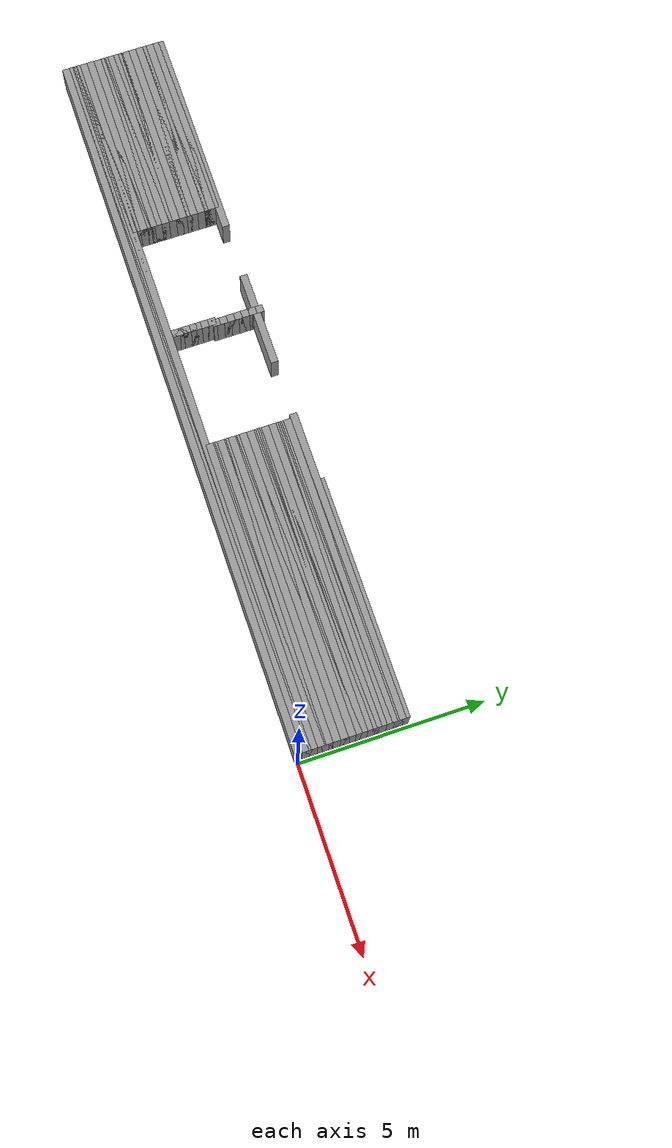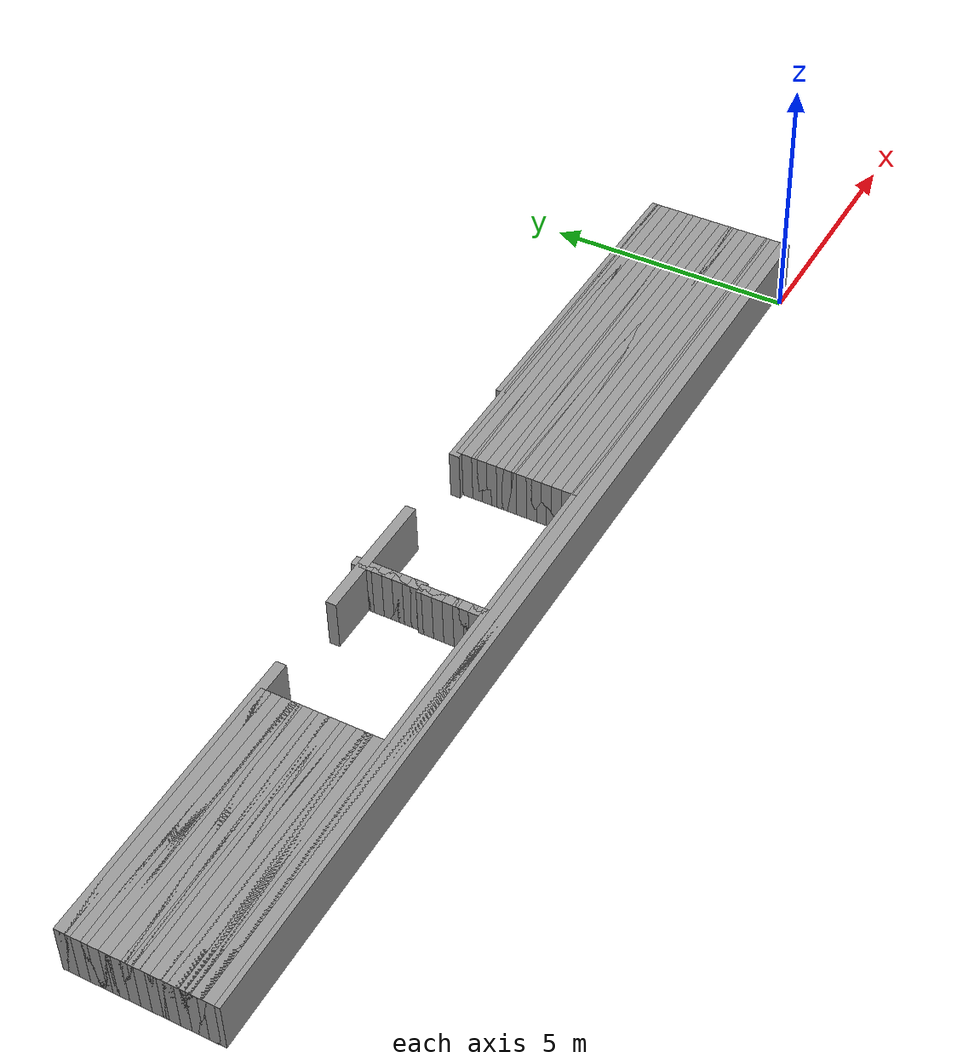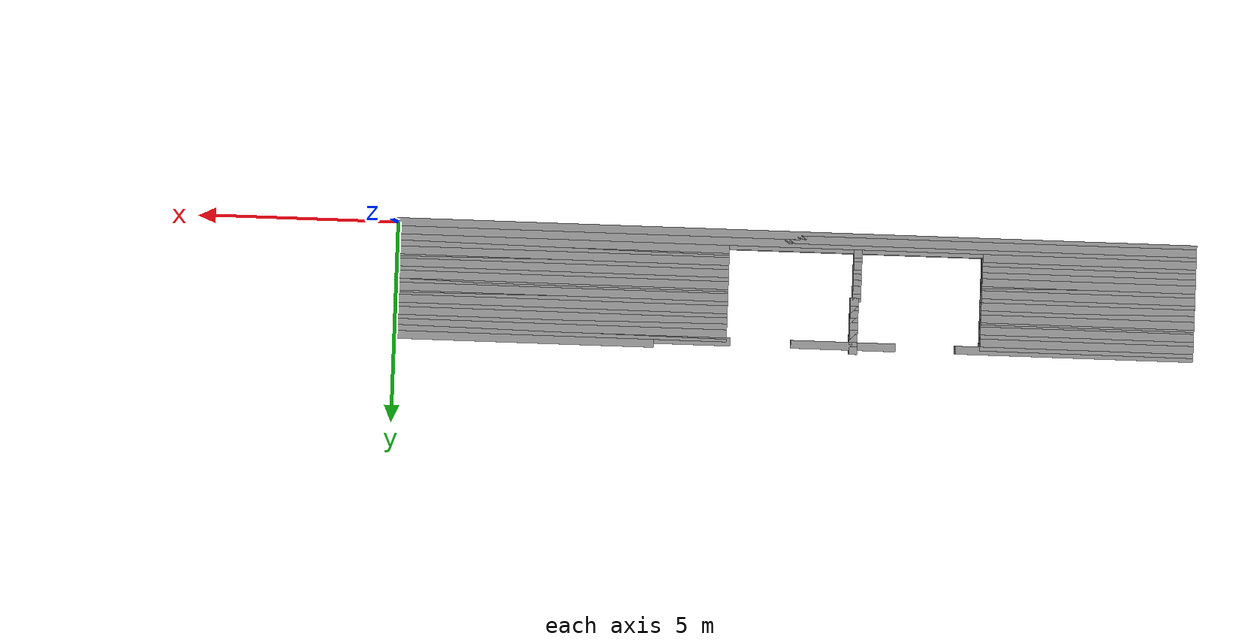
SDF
<sdf version="1.6">
 <world name="GridMap">
  <model name="GridMap">
   <link name="Wall_(99.5,0.0)">
    <collision name="Wall_(99.5,0.0)_Collision">
     <geometry><box><size>19.9 0.2 1.0</size></box></geometry>
     <pose>-9.95 0.0 0.5 0 -0 0</pose>
    </collision>
    <visual name="Wall_(99.5,0.0)_Visual">
     <geometry><box><size>19.9 0.2 1.0</size></box></geometry>
     <pose>-9.95 0.0 0.5 0 -0 0</pose>
     <material>
      <script><uri>file://media/materials/scripts/gazebo.material</uri><name>Gazebo/Grey</name></script>
      <ambient>1 1 1 1</ambient>
     </material>
     <meta><layer>0</layer></meta>
    </visual>
    <pose>0 0 0.5 0 -0 0</pose>
   </link>
   <link name="Wall_(99.5,1.0)">
    <collision name="Wall_(99.5,1.0)_Collision">
     <geometry><box><size>19.9 0.2 1.0</size></box></geometry>
     <pose>-9.95 0.1 0.5 0 -0 0</pose>
    </collision>
    <visual name="Wall_(99.5,1.0)_Visual">
     <geometry><box><size>19.9 0.2 1.0</size></box></geometry>
     <pose>-9.95 0.1 0.5 0 -0 0</pose>
     <material>
      <script><uri>file://media/materials/scripts/gazebo.material</uri><name>Gazebo/Grey</name></script>
      <ambient>1 1 1 1</ambient>
     </material>
     <meta><layer>0</layer></meta>
    </visual>
    <pose>0 0 0.5 0 -0 0</pose>
   </link>
   <link name="Wall_(99.5,2.0)">
    <collision name="Wall_(99.5,2.0)_Collision">
     <geometry><box><size>19.9 0.2 1.0</size></box></geometry>
     <pose>-9.95 0.2 0.5 0 -0 0</pose>
    </collision>
    <visual name="Wall_(99.5,2.0)_Visual">
     <geometry><box><size>19.9 0.2 1.0</size></box></geometry>
     <pose>-9.95 0.2 0.5 0 -0 0</pose>
     <material>
      <script><uri>file://media/materials/scripts/gazebo.material</uri><name>Gazebo/Grey</name></script>
      <ambient>1 1 1 1</ambient>
     </material>
     <meta><layer>0</layer></meta>
    </visual>
    <pose>0 0 0.5 0 -0 0</pose>
   </link>
   <link name="Wall_(99.5,3.0)">
    <collision name="Wall_(99.5,3.0)_Collision">
     <geometry><box><size>19.9 0.2 1.0</size></box></geometry>
     <pose>-9.95 0.3 0.5 0 -0 0</pose>
    </collision>
    <visual name="Wall_(99.5,3.0)_Visual">
     <geometry><box><size>19.9 0.2 1.0</size></box></geometry>
     <pose>-9.95 0.3 0.5 0 -0 0</pose>
     <material>
      <script><uri>file://media/materials/scripts/gazebo.material</uri><name>Gazebo/Grey</name></script>
      <ambient>1 1 1 1</ambient>
     </material>
     <meta><layer>0</layer></meta>
    </visual>
    <pose>0 0 0.5 0 -0 0</pose>
   </link>
   <link name="Wall_(41.5,4.0)">
    <collision name="Wall_(41.5,4.0)_Collision">
     <geometry><box><size>8.3 0.2 1.0</size></box></geometry>
     <pose>-4.15 0.4 0.5 0 -0 0</pose>
    </collision>
    <visual name="Wall_(41.5,4.0)_Visual">
     <geometry><box><size>8.3 0.2 1.0</size></box></geometry>
     <pose>-4.15 0.4 0.5 0 -0 0</pose>
     <material>
      <script><uri>file://media/materials/scripts/gazebo.material</uri><name>Gazebo/Grey</name></script>
      <ambient>1 1 1 1</ambient>
     </material>
     <meta><layer>0</layer></meta>
    </visual>
    <pose>0 0 0.5 0 -0 0</pose>
   </link>
   <link name="Wall_(115.0,4.0)">
    <collision name="Wall_(115.0,4.0)_Collision">
     <geometry><box><size>0.2 0.2 1.0</size></box></geometry>
     <pose>-11.5 0.4 0.5 0 -0 0</pose>
    </collision>
    <visual name="Wall_(115.0,4.0)_Visual">
     <geometry><box><size>0.2 0.2 1.0</size></box></geometry>
     <pose>-11.5 0.4 0.5 0 -0 0</pose>
     <material>
      <script><uri>file://media/materials/scripts/gazebo.material</uri><name>Gazebo/Grey</name></script>
      <ambient>1 1 1 1</ambient>
     </material>
     <meta><layer>0</layer></meta>
    </visual>
    <pose>0 0 0.5 0 -0 0</pose>
   </link>
   <link name="Wall_(172.5,4.0)">
    <collision name="Wall_(172.5,4.0)_Collision">
     <geometry><box><size>5.3 0.2 1.0</size></box></geometry>
     <pose>-17.25 0.4 0.5 0 -0 0</pose>
    </collision>
    <visual name="Wall_(172.5,4.0)_Visual">
     <geometry><box><size>5.3 0.2 1.0</size></box></geometry>
     <pose>-17.25 0.4 0.5 0 -0 0</pose>
     <material>
      <script><uri>file://media/materials/scripts/gazebo.material</uri><name>Gazebo/Grey</name></script>
      <ambient>1 1 1 1</ambient>
     </material>
     <meta><layer>0</layer></meta>
    </visual>
    <pose>0 0 0.5 0 -0 0</pose>
   </link>
   <link name="Wall_(41.5,5.0)">
    <collision name="Wall_(41.5,5.0)_Collision">
     <geometry><box><size>8.3 0.2 1.0</size></box></geometry>
     <pose>-4.15 0.5 0.5 0 -0 0</pose>
    </collision>
    <visual name="Wall_(41.5,5.0)_Visual">
     <geometry><box><size>8.3 0.2 1.0</size></box></geometry>
     <pose>-4.15 0.5 0.5 0 -0 0</pose>
     <material>
      <script><uri>file://media/materials/scripts/gazebo.material</uri><name>Gazebo/Grey</name></script>
      <ambient>1 1 1 1</ambient>
     </material>
     <meta><layer>0</layer></meta>
    </visual>
    <pose>0 0 0.5 0 -0 0</pose>
   </link>
   <link name="Wall_(115.0,5.0)">
    <collision name="Wall_(115.0,5.0)_Collision">
     <geometry><box><size>0.2 0.2 1.0</size></box></geometry>
     <pose>-11.5 0.5 0.5 0 -0 0</pose>
    </collision>
    <visual name="Wall_(115.0,5.0)_Visual">
     <geometry><box><size>0.2 0.2 1.0</size></box></geometry>
     <pose>-11.5 0.5 0.5 0 -0 0</pose>
     <material>
      <script><uri>file://media/materials/scripts/gazebo.material</uri><name>Gazebo/Grey</name></script>
      <ambient>1 1 1 1</ambient>
     </material>
     <meta><layer>0</layer></meta>
    </visual>
    <pose>0 0 0.5 0 -0 0</pose>
   </link>
   <link name="Wall_(172.5,5.0)">
    <collision name="Wall_(172.5,5.0)_Collision">
     <geometry><box><size>5.3 0.2 1.0</size></box></geometry>
     <pose>-17.25 0.5 0.5 0 -0 0</pose>
    </collision>
    <visual name="Wall_(172.5,5.0)_Visual">
     <geometry><box><size>5.3 0.2 1.0</size></box></geometry>
     <pose>-17.25 0.5 0.5 0 -0 0</pose>
     <material>
      <script><uri>file://media/materials/scripts/gazebo.material</uri><name>Gazebo/Grey</name></script>
      <ambient>1 1 1 1</ambient>
     </material>
     <meta><layer>0</layer></meta>
    </visual>
    <pose>0 0 0.5 0 -0 0</pose>
   </link>
   <link name="Wall_(41.5,6.0)">
    <collision name="Wall_(41.5,6.0)_Collision">
     <geometry><box><size>8.3 0.2 1.0</size></box></geometry>
     <pose>-4.15 0.6 0.5 0 -0 0</pose>
    </collision>
    <visual name="Wall_(41.5,6.0)_Visual">
     <geometry><box><size>8.3 0.2 1.0</size></box></geometry>
     <pose>-4.15 0.6 0.5 0 -0 0</pose>
     <material>
      <script><uri>file://media/materials/scripts/gazebo.material</uri><name>Gazebo/Grey</name></script>
      <ambient>1 1 1 1</ambient>
     </material>
     <meta><layer>0</layer></meta>
    </visual>
    <pose>0 0 0.5 0 -0 0</pose>
   </link>
   <link name="Wall_(115.0,6.0)">
    <collision name="Wall_(115.0,6.0)_Collision">
     <geometry><box><size>0.2 0.2 1.0</size></box></geometry>
     <pose>-11.5 0.6 0.5 0 -0 0</pose>
    </collision>
    <visual name="Wall_(115.0,6.0)_Visual">
     <geometry><box><size>0.2 0.2 1.0</size></box></geometry>
     <pose>-11.5 0.6 0.5 0 -0 0</pose>
     <material>
      <script><uri>file://media/materials/scripts/gazebo.material</uri><name>Gazebo/Grey</name></script>
      <ambient>1 1 1 1</ambient>
     </material>
     <meta><layer>0</layer></meta>
    </visual>
    <pose>0 0 0.5 0 -0 0</pose>
   </link>
   <link name="Wall_(172.5,6.0)">
    <collision name="Wall_(172.5,6.0)_Collision">
     <geometry><box><size>5.3 0.2 1.0</size></box></geometry>
     <pose>-17.25 0.6 0.5 0 -0 0</pose>
    </collision>
    <visual name="Wall_(172.5,6.0)_Visual">
     <geometry><box><size>5.3 0.2 1.0</size></box></geometry>
     <pose>-17.25 0.6 0.5 0 -0 0</pose>
     <material>
      <script><uri>file://media/materials/scripts/gazebo.material</uri><name>Gazebo/Grey</name></script>
      <ambient>1 1 1 1</ambient>
     </material>
     <meta><layer>0</layer></meta>
    </visual>
    <pose>0 0 0.5 0 -0 0</pose>
   </link>
   <link name="Wall_(41.5,7.0)">
    <collision name="Wall_(41.5,7.0)_Collision">
     <geometry><box><size>8.3 0.2 1.0</size></box></geometry>
     <pose>-4.15 0.7 0.5 0 -0 0</pose>
    </collision>
    <visual name="Wall_(41.5,7.0)_Visual">
     <geometry><box><size>8.3 0.2 1.0</size></box></geometry>
     <pose>-4.15 0.7 0.5 0 -0 0</pose>
     <material>
      <script><uri>file://media/materials/scripts/gazebo.material</uri><name>Gazebo/Grey</name></script>
      <ambient>1 1 1 1</ambient>
     </material>
     <meta><layer>0</layer></meta>
    </visual>
    <pose>0 0 0.5 0 -0 0</pose>
   </link>
   <link name="Wall_(115.0,7.0)">
    <collision name="Wall_(115.0,7.0)_Collision">
     <geometry><box><size>0.2 0.2 1.0</size></box></geometry>
     <pose>-11.5 0.7 0.5 0 -0 0</pose>
    </collision>
    <visual name="Wall_(115.0,7.0)_Visual">
     <geometry><box><size>0.2 0.2 1.0</size></box></geometry>
     <pose>-11.5 0.7 0.5 0 -0 0</pose>
     <material>
      <script><uri>file://media/materials/scripts/gazebo.material</uri><name>Gazebo/Grey</name></script>
      <ambient>1 1 1 1</ambient>
     </material>
     <meta><layer>0</layer></meta>
    </visual>
    <pose>0 0 0.5 0 -0 0</pose>
   </link>
   <link name="Wall_(172.5,7.0)">
    <collision name="Wall_(172.5,7.0)_Collision">
     <geometry><box><size>5.3 0.2 1.0</size></box></geometry>
     <pose>-17.25 0.7 0.5 0 -0 0</pose>
    </collision>
    <visual name="Wall_(172.5,7.0)_Visual">
     <geometry><box><size>5.3 0.2 1.0</size></box></geometry>
     <pose>-17.25 0.7 0.5 0 -0 0</pose>
     <material>
      <script><uri>file://media/materials/scripts/gazebo.material</uri><name>Gazebo/Grey</name></script>
      <ambient>1 1 1 1</ambient>
     </material>
     <meta><layer>0</layer></meta>
    </visual>
    <pose>0 0 0.5 0 -0 0</pose>
   </link>
   <link name="Wall_(41.5,8.0)">
    <collision name="Wall_(41.5,8.0)_Collision">
     <geometry><box><size>8.3 0.2 1.0</size></box></geometry>
     <pose>-4.15 0.8 0.5 0 -0 0</pose>
    </collision>
    <visual name="Wall_(41.5,8.0)_Visual">
     <geometry><box><size>8.3 0.2 1.0</size></box></geometry>
     <pose>-4.15 0.8 0.5 0 -0 0</pose>
     <material>
      <script><uri>file://media/materials/scripts/gazebo.material</uri><name>Gazebo/Grey</name></script>
      <ambient>1 1 1 1</ambient>
     </material>
     <meta><layer>0</layer></meta>
    </visual>
    <pose>0 0 0.5 0 -0 0</pose>
   </link>
   <link name="Wall_(115.0,8.0)">
    <collision name="Wall_(115.0,8.0)_Collision">
     <geometry><box><size>0.2 0.2 1.0</size></box></geometry>
     <pose>-11.5 0.8 0.5 0 -0 0</pose>
    </collision>
    <visual name="Wall_(115.0,8.0)_Visual">
     <geometry><box><size>0.2 0.2 1.0</size></box></geometry>
     <pose>-11.5 0.8 0.5 0 -0 0</pose>
     <material>
      <script><uri>file://media/materials/scripts/gazebo.material</uri><name>Gazebo/Grey</name></script>
      <ambient>1 1 1 1</ambient>
     </material>
     <meta><layer>0</layer></meta>
    </visual>
    <pose>0 0 0.5 0 -0 0</pose>
   </link>
   <link name="Wall_(172.5,8.0)">
    <collision name="Wall_(172.5,8.0)_Collision">
     <geometry><box><size>5.3 0.2 1.0</size></box></geometry>
     <pose>-17.25 0.8 0.5 0 -0 0</pose>
    </collision>
    <visual name="Wall_(172.5,8.0)_Visual">
     <geometry><box><size>5.3 0.2 1.0</size></box></geometry>
     <pose>-17.25 0.8 0.5 0 -0 0</pose>
     <material>
      <script><uri>file://media/materials/scripts/gazebo.material</uri><name>Gazebo/Grey</name></script>
      <ambient>1 1 1 1</ambient>
     </material>
     <meta><layer>0</layer></meta>
    </visual>
    <pose>0 0 0.5 0 -0 0</pose>
   </link>
   <link name="Wall_(41.5,9.0)">
    <collision name="Wall_(41.5,9.0)_Collision">
     <geometry><box><size>8.3 0.2 1.0</size></box></geometry>
     <pose>-4.15 0.9 0.5 0 -0 0</pose>
    </collision>
    <visual name="Wall_(41.5,9.0)_Visual">
     <geometry><box><size>8.3 0.2 1.0</size></box></geometry>
     <pose>-4.15 0.9 0.5 0 -0 0</pose>
     <material>
      <script><uri>file://media/materials/scripts/gazebo.material</uri><name>Gazebo/Grey</name></script>
      <ambient>1 1 1 1</ambient>
     </material>
     <meta><layer>0</layer></meta>
    </visual>
    <pose>0 0 0.5 0 -0 0</pose>
   </link>
   <link name="Wall_(115.0,9.0)">
    <collision name="Wall_(115.0,9.0)_Collision">
     <geometry><box><size>0.2 0.2 1.0</size></box></geometry>
     <pose>-11.5 0.9 0.5 0 -0 0</pose>
    </collision>
    <visual name="Wall_(115.0,9.0)_Visual">
     <geometry><box><size>0.2 0.2 1.0</size></box></geometry>
     <pose>-11.5 0.9 0.5 0 -0 0</pose>
     <material>
      <script><uri>file://media/materials/scripts/gazebo.material</uri><name>Gazebo/Grey</name></script>
      <ambient>1 1 1 1</ambient>
     </material>
     <meta><layer>0</layer></meta>
    </visual>
    <pose>0 0 0.5 0 -0 0</pose>
   </link>
   <link name="Wall_(172.5,9.0)">
    <collision name="Wall_(172.5,9.0)_Collision">
     <geometry><box><size>5.3 0.2 1.0</size></box></geometry>
     <pose>-17.25 0.9 0.5 0 -0 0</pose>
    </collision>
    <visual name="Wall_(172.5,9.0)_Visual">
     <geometry><box><size>5.3 0.2 1.0</size></box></geometry>
     <pose>-17.25 0.9 0.5 0 -0 0</pose>
     <material>
      <script><uri>file://media/materials/scripts/gazebo.material</uri><name>Gazebo/Grey</name></script>
      <ambient>1 1 1 1</ambient>
     </material>
     <meta><layer>0</layer></meta>
    </visual>
    <pose>0 0 0.5 0 -0 0</pose>
   </link>
   <link name="Wall_(41.5,10.0)">
    <collision name="Wall_(41.5,10.0)_Collision">
     <geometry><box><size>8.3 0.2 1.0</size></box></geometry>
     <pose>-4.15 1.0 0.5 0 -0 0</pose>
    </collision>
    <visual name="Wall_(41.5,10.0)_Visual">
     <geometry><box><size>8.3 0.2 1.0</size></box></geometry>
     <pose>-4.15 1.0 0.5 0 -0 0</pose>
     <material>
      <script><uri>file://media/materials/scripts/gazebo.material</uri><name>Gazebo/Grey</name></script>
      <ambient>1 1 1 1</ambient>
     </material>
     <meta><layer>0</layer></meta>
    </visual>
    <pose>0 0 0.5 0 -0 0</pose>
   </link>
   <link name="Wall_(115.0,10.0)">
    <collision name="Wall_(115.0,10.0)_Collision">
     <geometry><box><size>0.2 0.2 1.0</size></box></geometry>
     <pose>-11.5 1.0 0.5 0 -0 0</pose>
    </collision>
    <visual name="Wall_(115.0,10.0)_Visual">
     <geometry><box><size>0.2 0.2 1.0</size></box></geometry>
     <pose>-11.5 1.0 0.5 0 -0 0</pose>
     <material>
      <script><uri>file://media/materials/scripts/gazebo.material</uri><name>Gazebo/Grey</name></script>
      <ambient>1 1 1 1</ambient>
     </material>
     <meta><layer>0</layer></meta>
    </visual>
    <pose>0 0 0.5 0 -0 0</pose>
   </link>
   <link name="Wall_(172.5,10.0)">
    <collision name="Wall_(172.5,10.0)_Collision">
     <geometry><box><size>5.3 0.2 1.0</size></box></geometry>
     <pose>-17.25 1.0 0.5 0 -0 0</pose>
    </collision>
    <visual name="Wall_(172.5,10.0)_Visual">
     <geometry><box><size>5.3 0.2 1.0</size></box></geometry>
     <pose>-17.25 1.0 0.5 0 -0 0</pose>
     <material>
      <script><uri>file://media/materials/scripts/gazebo.material</uri><name>Gazebo/Grey</name></script>
      <ambient>1 1 1 1</ambient>
     </material>
     <meta><layer>0</layer></meta>
    </visual>
    <pose>0 0 0.5 0 -0 0</pose>
   </link>
   <link name="Wall_(41.5,11.0)">
    <collision name="Wall_(41.5,11.0)_Collision">
     <geometry><box><size>8.3 0.2 1.0</size></box></geometry>
     <pose>-4.15 1.1 0.5 0 -0 0</pose>
    </collision>
    <visual name="Wall_(41.5,11.0)_Visual">
     <geometry><box><size>8.3 0.2 1.0</size></box></geometry>
     <pose>-4.15 1.1 0.5 0 -0 0</pose>
     <material>
      <script><uri>file://media/materials/scripts/gazebo.material</uri><name>Gazebo/Grey</name></script>
      <ambient>1 1 1 1</ambient>
     </material>
     <meta><layer>0</layer></meta>
    </visual>
    <pose>0 0 0.5 0 -0 0</pose>
   </link>
   <link name="Wall_(115.0,11.0)">
    <collision name="Wall_(115.0,11.0)_Collision">
     <geometry><box><size>0.2 0.2 1.0</size></box></geometry>
     <pose>-11.5 1.1 0.5 0 -0 0</pose>
    </collision>
    <visual name="Wall_(115.0,11.0)_Visual">
     <geometry><box><size>0.2 0.2 1.0</size></box></geometry>
     <pose>-11.5 1.1 0.5 0 -0 0</pose>
     <material>
      <script><uri>file://media/materials/scripts/gazebo.material</uri><name>Gazebo/Grey</name></script>
      <ambient>1 1 1 1</ambient>
     </material>
     <meta><layer>0</layer></meta>
    </visual>
    <pose>0 0 0.5 0 -0 0</pose>
   </link>
   <link name="Wall_(172.5,11.0)">
    <collision name="Wall_(172.5,11.0)_Collision">
     <geometry><box><size>5.3 0.2 1.0</size></box></geometry>
     <pose>-17.25 1.1 0.5 0 -0 0</pose>
    </collision>
    <visual name="Wall_(172.5,11.0)_Visual">
     <geometry><box><size>5.3 0.2 1.0</size></box></geometry>
     <pose>-17.25 1.1 0.5 0 -0 0</pose>
     <material>
      <script><uri>file://media/materials/scripts/gazebo.material</uri><name>Gazebo/Grey</name></script>
      <ambient>1 1 1 1</ambient>
     </material>
     <meta><layer>0</layer></meta>
    </visual>
    <pose>0 0 0.5 0 -0 0</pose>
   </link>
   <link name="Wall_(41.5,12.0)">
    <collision name="Wall_(41.5,12.0)_Collision">
     <geometry><box><size>8.3 0.2 1.0</size></box></geometry>
     <pose>-4.15 1.2 0.5 0 -0 0</pose>
    </collision>
    <visual name="Wall_(41.5,12.0)_Visual">
     <geometry><box><size>8.3 0.2 1.0</size></box></geometry>
     <pose>-4.15 1.2 0.5 0 -0 0</pose>
     <material>
      <script><uri>file://media/materials/scripts/gazebo.material</uri><name>Gazebo/Grey</name></script>
      <ambient>1 1 1 1</ambient>
     </material>
     <meta><layer>0</layer></meta>
    </visual>
    <pose>0 0 0.5 0 -0 0</pose>
   </link>
   <link name="Wall_(115.0,12.0)">
    <collision name="Wall_(115.0,12.0)_Collision">
     <geometry><box><size>0.2 0.2 1.0</size></box></geometry>
     <pose>-11.5 1.2 0.5 0 -0 0</pose>
    </collision>
    <visual name="Wall_(115.0,12.0)_Visual">
     <geometry><box><size>0.2 0.2 1.0</size></box></geometry>
     <pose>-11.5 1.2 0.5 0 -0 0</pose>
     <material>
      <script><uri>file://media/materials/scripts/gazebo.material</uri><name>Gazebo/Grey</name></script>
      <ambient>1 1 1 1</ambient>
     </material>
     <meta><layer>0</layer></meta>
    </visual>
    <pose>0 0 0.5 0 -0 0</pose>
   </link>
   <link name="Wall_(172.5,12.0)">
    <collision name="Wall_(172.5,12.0)_Collision">
     <geometry><box><size>5.3 0.2 1.0</size></box></geometry>
     <pose>-17.25 1.2 0.5 0 -0 0</pose>
    </collision>
    <visual name="Wall_(172.5,12.0)_Visual">
     <geometry><box><size>5.3 0.2 1.0</size></box></geometry>
     <pose>-17.25 1.2 0.5 0 -0 0</pose>
     <material>
      <script><uri>file://media/materials/scripts/gazebo.material</uri><name>Gazebo/Grey</name></script>
      <ambient>1 1 1 1</ambient>
     </material>
     <meta><layer>0</layer></meta>
    </visual>
    <pose>0 0 0.5 0 -0 0</pose>
   </link>
   <link name="Wall_(41.5,13.0)">
    <collision name="Wall_(41.5,13.0)_Collision">
     <geometry><box><size>8.3 0.2 1.0</size></box></geometry>
     <pose>-4.15 1.3 0.5 0 -0 0</pose>
    </collision>
    <visual name="Wall_(41.5,13.0)_Visual">
     <geometry><box><size>8.3 0.2 1.0</size></box></geometry>
     <pose>-4.15 1.3 0.5 0 -0 0</pose>
     <material>
      <script><uri>file://media/materials/scripts/gazebo.material</uri><name>Gazebo/Grey</name></script>
      <ambient>1 1 1 1</ambient>
     </material>
     <meta><layer>0</layer></meta>
    </visual>
    <pose>0 0 0.5 0 -0 0</pose>
   </link>
   <link name="Wall_(115.0,13.0)">
    <collision name="Wall_(115.0,13.0)_Collision">
     <geometry><box><size>0.2 0.2 1.0</size></box></geometry>
     <pose>-11.5 1.3 0.5 0 -0 0</pose>
    </collision>
    <visual name="Wall_(115.0,13.0)_Visual">
     <geometry><box><size>0.2 0.2 1.0</size></box></geometry>
     <pose>-11.5 1.3 0.5 0 -0 0</pose>
     <material>
      <script><uri>file://media/materials/scripts/gazebo.material</uri><name>Gazebo/Grey</name></script>
      <ambient>1 1 1 1</ambient>
     </material>
     <meta><layer>0</layer></meta>
    </visual>
    <pose>0 0 0.5 0 -0 0</pose>
   </link>
   <link name="Wall_(172.5,13.0)">
    <collision name="Wall_(172.5,13.0)_Collision">
     <geometry><box><size>5.3 0.2 1.0</size></box></geometry>
     <pose>-17.25 1.3 0.5 0 -0 0</pose>
    </collision>
    <visual name="Wall_(172.5,13.0)_Visual">
     <geometry><box><size>5.3 0.2 1.0</size></box></geometry>
     <pose>-17.25 1.3 0.5 0 -0 0</pose>
     <material>
      <script><uri>file://media/materials/scripts/gazebo.material</uri><name>Gazebo/Grey</name></script>
      <ambient>1 1 1 1</ambient>
     </material>
     <meta><layer>0</layer></meta>
    </visual>
    <pose>0 0 0.5 0 -0 0</pose>
   </link>
   <link name="Wall_(41.5,14.0)">
    <collision name="Wall_(41.5,14.0)_Collision">
     <geometry><box><size>8.3 0.2 1.0</size></box></geometry>
     <pose>-4.15 1.4 0.5 0 -0 0</pose>
    </collision>
    <visual name="Wall_(41.5,14.0)_Visual">
     <geometry><box><size>8.3 0.2 1.0</size></box></geometry>
     <pose>-4.15 1.4 0.5 0 -0 0</pose>
     <material>
      <script><uri>file://media/materials/scripts/gazebo.material</uri><name>Gazebo/Grey</name></script>
      <ambient>1 1 1 1</ambient>
     </material>
     <meta><layer>0</layer></meta>
    </visual>
    <pose>0 0 0.5 0 -0 0</pose>
   </link>
   <link name="Wall_(115.0,14.0)">
    <collision name="Wall_(115.0,14.0)_Collision">
     <geometry><box><size>0.2 0.2 1.0</size></box></geometry>
     <pose>-11.5 1.4 0.5 0 -0 0</pose>
    </collision>
    <visual name="Wall_(115.0,14.0)_Visual">
     <geometry><box><size>0.2 0.2 1.0</size></box></geometry>
     <pose>-11.5 1.4 0.5 0 -0 0</pose>
     <material>
      <script><uri>file://media/materials/scripts/gazebo.material</uri><name>Gazebo/Grey</name></script>
      <ambient>1 1 1 1</ambient>
     </material>
     <meta><layer>0</layer></meta>
    </visual>
    <pose>0 0 0.5 0 -0 0</pose>
   </link>
   <link name="Wall_(172.5,14.0)">
    <collision name="Wall_(172.5,14.0)_Collision">
     <geometry><box><size>5.3 0.2 1.0</size></box></geometry>
     <pose>-17.25 1.4 0.5 0 -0 0</pose>
    </collision>
    <visual name="Wall_(172.5,14.0)_Visual">
     <geometry><box><size>5.3 0.2 1.0</size></box></geometry>
     <pose>-17.25 1.4 0.5 0 -0 0</pose>
     <material>
      <script><uri>file://media/materials/scripts/gazebo.material</uri><name>Gazebo/Grey</name></script>
      <ambient>1 1 1 1</ambient>
     </material>
     <meta><layer>0</layer></meta>
    </visual>
    <pose>0 0 0.5 0 -0 0</pose>
   </link>
   <link name="Wall_(41.5,15.0)">
    <collision name="Wall_(41.5,15.0)_Collision">
     <geometry><box><size>8.3 0.2 1.0</size></box></geometry>
     <pose>-4.15 1.5 0.5 0 -0 0</pose>
    </collision>
    <visual name="Wall_(41.5,15.0)_Visual">
     <geometry><box><size>8.3 0.2 1.0</size></box></geometry>
     <pose>-4.15 1.5 0.5 0 -0 0</pose>
     <material>
      <script><uri>file://media/materials/scripts/gazebo.material</uri><name>Gazebo/Grey</name></script>
      <ambient>1 1 1 1</ambient>
     </material>
     <meta><layer>0</layer></meta>
    </visual>
    <pose>0 0 0.5 0 -0 0</pose>
   </link>
   <link name="Wall_(115.0,15.0)">
    <collision name="Wall_(115.0,15.0)_Collision">
     <geometry><box><size>0.2 0.2 1.0</size></box></geometry>
     <pose>-11.5 1.5 0.5 0 -0 0</pose>
    </collision>
    <visual name="Wall_(115.0,15.0)_Visual">
     <geometry><box><size>0.2 0.2 1.0</size></box></geometry>
     <pose>-11.5 1.5 0.5 0 -0 0</pose>
     <material>
      <script><uri>file://media/materials/scripts/gazebo.material</uri><name>Gazebo/Grey</name></script>
      <ambient>1 1 1 1</ambient>
     </material>
     <meta><layer>0</layer></meta>
    </visual>
    <pose>0 0 0.5 0 -0 0</pose>
   </link>
   <link name="Wall_(172.5,15.0)">
    <collision name="Wall_(172.5,15.0)_Collision">
     <geometry><box><size>5.3 0.2 1.0</size></box></geometry>
     <pose>-17.25 1.5 0.5 0 -0 0</pose>
    </collision>
    <visual name="Wall_(172.5,15.0)_Visual">
     <geometry><box><size>5.3 0.2 1.0</size></box></geometry>
     <pose>-17.25 1.5 0.5 0 -0 0</pose>
     <material>
      <script><uri>file://media/materials/scripts/gazebo.material</uri><name>Gazebo/Grey</name></script>
      <ambient>1 1 1 1</ambient>
     </material>
     <meta><layer>0</layer></meta>
    </visual>
    <pose>0 0 0.5 0 -0 0</pose>
   </link>
   <link name="Wall_(41.5,16.0)">
    <collision name="Wall_(41.5,16.0)_Collision">
     <geometry><box><size>8.3 0.2 1.0</size></box></geometry>
     <pose>-4.15 1.6 0.5 0 -0 0</pose>
    </collision>
    <visual name="Wall_(41.5,16.0)_Visual">
     <geometry><box><size>8.3 0.2 1.0</size></box></geometry>
     <pose>-4.15 1.6 0.5 0 -0 0</pose>
     <material>
      <script><uri>file://media/materials/scripts/gazebo.material</uri><name>Gazebo/Grey</name></script>
      <ambient>1 1 1 1</ambient>
     </material>
     <meta><layer>0</layer></meta>
    </visual>
    <pose>0 0 0.5 0 -0 0</pose>
   </link>
   <link name="Wall_(114.5,16.0)">
    <collision name="Wall_(114.5,16.0)_Collision">
     <geometry><box><size>0.2 0.2 1.0</size></box></geometry>
     <pose>-11.45 1.6 0.5 0 -0 0</pose>
    </collision>
    <visual name="Wall_(114.5,16.0)_Visual">
     <geometry><box><size>0.2 0.2 1.0</size></box></geometry>
     <pose>-11.45 1.6 0.5 0 -0 0</pose>
     <material>
      <script><uri>file://media/materials/scripts/gazebo.material</uri><name>Gazebo/Grey</name></script>
      <ambient>1 1 1 1</ambient>
     </material>
     <meta><layer>0</layer></meta>
    </visual>
    <pose>0 0 0.5 0 -0 0</pose>
   </link>
   <link name="Wall_(172.5,16.0)">
    <collision name="Wall_(172.5,16.0)_Collision">
     <geometry><box><size>5.3 0.2 1.0</size></box></geometry>
     <pose>-17.25 1.6 0.5 0 -0 0</pose>
    </collision>
    <visual name="Wall_(172.5,16.0)_Visual">
     <geometry><box><size>5.3 0.2 1.0</size></box></geometry>
     <pose>-17.25 1.6 0.5 0 -0 0</pose>
     <material>
      <script><uri>file://media/materials/scripts/gazebo.material</uri><name>Gazebo/Grey</name></script>
      <ambient>1 1 1 1</ambient>
     </material>
     <meta><layer>0</layer></meta>
    </visual>
    <pose>0 0 0.5 0 -0 0</pose>
   </link>
   <link name="Wall_(41.5,17.0)">
    <collision name="Wall_(41.5,17.0)_Collision">
     <geometry><box><size>8.3 0.2 1.0</size></box></geometry>
     <pose>-4.15 1.7 0.5 0 -0 0</pose>
    </collision>
    <visual name="Wall_(41.5,17.0)_Visual">
     <geometry><box><size>8.3 0.2 1.0</size></box></geometry>
     <pose>-4.15 1.7 0.5 0 -0 0</pose>
     <material>
      <script><uri>file://media/materials/scripts/gazebo.material</uri><name>Gazebo/Grey</name></script>
      <ambient>1 1 1 1</ambient>
     </material>
     <meta><layer>0</layer></meta>
    </visual>
    <pose>0 0 0.5 0 -0 0</pose>
   </link>
   <link name="Wall_(114.5,17.0)">
    <collision name="Wall_(114.5,17.0)_Collision">
     <geometry><box><size>0.2 0.2 1.0</size></box></geometry>
     <pose>-11.45 1.7 0.5 0 -0 0</pose>
    </collision>
    <visual name="Wall_(114.5,17.0)_Visual">
     <geometry><box><size>0.2 0.2 1.0</size></box></geometry>
     <pose>-11.45 1.7 0.5 0 -0 0</pose>
     <material>
      <script><uri>file://media/materials/scripts/gazebo.material</uri><name>Gazebo/Grey</name></script>
      <ambient>1 1 1 1</ambient>
     </material>
     <meta><layer>0</layer></meta>
    </visual>
    <pose>0 0 0.5 0 -0 0</pose>
   </link>
   <link name="Wall_(172.5,17.0)">
    <collision name="Wall_(172.5,17.0)_Collision">
     <geometry><box><size>5.3 0.2 1.0</size></box></geometry>
     <pose>-17.25 1.7 0.5 0 -0 0</pose>
    </collision>
    <visual name="Wall_(172.5,17.0)_Visual">
     <geometry><box><size>5.3 0.2 1.0</size></box></geometry>
     <pose>-17.25 1.7 0.5 0 -0 0</pose>
     <material>
      <script><uri>file://media/materials/scripts/gazebo.material</uri><name>Gazebo/Grey</name></script>
      <ambient>1 1 1 1</ambient>
     </material>
     <meta><layer>0</layer></meta>
    </visual>
    <pose>0 0 0.5 0 -0 0</pose>
   </link>
   <link name="Wall_(41.5,18.0)">
    <collision name="Wall_(41.5,18.0)_Collision">
     <geometry><box><size>8.3 0.2 1.0</size></box></geometry>
     <pose>-4.15 1.8 0.5 0 -0 0</pose>
    </collision>
    <visual name="Wall_(41.5,18.0)_Visual">
     <geometry><box><size>8.3 0.2 1.0</size></box></geometry>
     <pose>-4.15 1.8 0.5 0 -0 0</pose>
     <material>
      <script><uri>file://media/materials/scripts/gazebo.material</uri><name>Gazebo/Grey</name></script>
      <ambient>1 1 1 1</ambient>
     </material>
     <meta><layer>0</layer></meta>
    </visual>
    <pose>0 0 0.5 0 -0 0</pose>
   </link>
   <link name="Wall_(114.5,18.0)">
    <collision name="Wall_(114.5,18.0)_Collision">
     <geometry><box><size>0.2 0.2 1.0</size></box></geometry>
     <pose>-11.45 1.8 0.5 0 -0 0</pose>
    </collision>
    <visual name="Wall_(114.5,18.0)_Visual">
     <geometry><box><size>0.2 0.2 1.0</size></box></geometry>
     <pose>-11.45 1.8 0.5 0 -0 0</pose>
     <material>
      <script><uri>file://media/materials/scripts/gazebo.material</uri><name>Gazebo/Grey</name></script>
      <ambient>1 1 1 1</ambient>
     </material>
     <meta><layer>0</layer></meta>
    </visual>
    <pose>0 0 0.5 0 -0 0</pose>
   </link>
   <link name="Wall_(172.5,18.0)">
    <collision name="Wall_(172.5,18.0)_Collision">
     <geometry><box><size>5.3 0.2 1.0</size></box></geometry>
     <pose>-17.25 1.8 0.5 0 -0 0</pose>
    </collision>
    <visual name="Wall_(172.5,18.0)_Visual">
     <geometry><box><size>5.3 0.2 1.0</size></box></geometry>
     <pose>-17.25 1.8 0.5 0 -0 0</pose>
     <material>
      <script><uri>file://media/materials/scripts/gazebo.material</uri><name>Gazebo/Grey</name></script>
      <ambient>1 1 1 1</ambient>
     </material>
     <meta><layer>0</layer></meta>
    </visual>
    <pose>0 0 0.5 0 -0 0</pose>
   </link>
   <link name="Wall_(41.5,19.0)">
    <collision name="Wall_(41.5,19.0)_Collision">
     <geometry><box><size>8.3 0.2 1.0</size></box></geometry>
     <pose>-4.15 1.9 0.5 0 -0 0</pose>
    </collision>
    <visual name="Wall_(41.5,19.0)_Visual">
     <geometry><box><size>8.3 0.2 1.0</size></box></geometry>
     <pose>-4.15 1.9 0.5 0 -0 0</pose>
     <material>
      <script><uri>file://media/materials/scripts/gazebo.material</uri><name>Gazebo/Grey</name></script>
      <ambient>1 1 1 1</ambient>
     </material>
     <meta><layer>0</layer></meta>
    </visual>
    <pose>0 0 0.5 0 -0 0</pose>
   </link>
   <link name="Wall_(114.5,19.0)">
    <collision name="Wall_(114.5,19.0)_Collision">
     <geometry><box><size>0.2 0.2 1.0</size></box></geometry>
     <pose>-11.45 1.9 0.5 0 -0 0</pose>
    </collision>
    <visual name="Wall_(114.5,19.0)_Visual">
     <geometry><box><size>0.2 0.2 1.0</size></box></geometry>
     <pose>-11.45 1.9 0.5 0 -0 0</pose>
     <material>
      <script><uri>file://media/materials/scripts/gazebo.material</uri><name>Gazebo/Grey</name></script>
      <ambient>1 1 1 1</ambient>
     </material>
     <meta><layer>0</layer></meta>
    </visual>
    <pose>0 0 0.5 0 -0 0</pose>
   </link>
   <link name="Wall_(172.5,19.0)">
    <collision name="Wall_(172.5,19.0)_Collision">
     <geometry><box><size>5.3 0.2 1.0</size></box></geometry>
     <pose>-17.25 1.9 0.5 0 -0 0</pose>
    </collision>
    <visual name="Wall_(172.5,19.0)_Visual">
     <geometry><box><size>5.3 0.2 1.0</size></box></geometry>
     <pose>-17.25 1.9 0.5 0 -0 0</pose>
     <material>
      <script><uri>file://media/materials/scripts/gazebo.material</uri><name>Gazebo/Grey</name></script>
      <ambient>1 1 1 1</ambient>
     </material>
     <meta><layer>0</layer></meta>
    </visual>
    <pose>0 0 0.5 0 -0 0</pose>
   </link>
   <link name="Wall_(41.5,20.0)">
    <collision name="Wall_(41.5,20.0)_Collision">
     <geometry><box><size>8.3 0.2 1.0</size></box></geometry>
     <pose>-4.15 2.0 0.5 0 -0 0</pose>
    </collision>
    <visual name="Wall_(41.5,20.0)_Visual">
     <geometry><box><size>8.3 0.2 1.0</size></box></geometry>
     <pose>-4.15 2.0 0.5 0 -0 0</pose>
     <material>
      <script><uri>file://media/materials/scripts/gazebo.material</uri><name>Gazebo/Grey</name></script>
      <ambient>1 1 1 1</ambient>
     </material>
     <meta><layer>0</layer></meta>
    </visual>
    <pose>0 0 0.5 0 -0 0</pose>
   </link>
   <link name="Wall_(114.5,20.0)">
    <collision name="Wall_(114.5,20.0)_Collision">
     <geometry><box><size>0.2 0.2 1.0</size></box></geometry>
     <pose>-11.45 2.0 0.5 0 -0 0</pose>
    </collision>
    <visual name="Wall_(114.5,20.0)_Visual">
     <geometry><box><size>0.2 0.2 1.0</size></box></geometry>
     <pose>-11.45 2.0 0.5 0 -0 0</pose>
     <material>
      <script><uri>file://media/materials/scripts/gazebo.material</uri><name>Gazebo/Grey</name></script>
      <ambient>1 1 1 1</ambient>
     </material>
     <meta><layer>0</layer></meta>
    </visual>
    <pose>0 0 0.5 0 -0 0</pose>
   </link>
   <link name="Wall_(172.5,20.0)">
    <collision name="Wall_(172.5,20.0)_Collision">
     <geometry><box><size>5.3 0.2 1.0</size></box></geometry>
     <pose>-17.25 2.0 0.5 0 -0 0</pose>
    </collision>
    <visual name="Wall_(172.5,20.0)_Visual">
     <geometry><box><size>5.3 0.2 1.0</size></box></geometry>
     <pose>-17.25 2.0 0.5 0 -0 0</pose>
     <material>
      <script><uri>file://media/materials/scripts/gazebo.material</uri><name>Gazebo/Grey</name></script>
      <ambient>1 1 1 1</ambient>
     </material>
     <meta><layer>0</layer></meta>
    </visual>
    <pose>0 0 0.5 0 -0 0</pose>
   </link>
   <link name="Wall_(41.5,21.0)">
    <collision name="Wall_(41.5,21.0)_Collision">
     <geometry><box><size>8.3 0.2 1.0</size></box></geometry>
     <pose>-4.15 2.1 0.5 0 -0 0</pose>
    </collision>
    <visual name="Wall_(41.5,21.0)_Visual">
     <geometry><box><size>8.3 0.2 1.0</size></box></geometry>
     <pose>-4.15 2.1 0.5 0 -0 0</pose>
     <material>
      <script><uri>file://media/materials/scripts/gazebo.material</uri><name>Gazebo/Grey</name></script>
      <ambient>1 1 1 1</ambient>
     </material>
     <meta><layer>0</layer></meta>
    </visual>
    <pose>0 0 0.5 0 -0 0</pose>
   </link>
   <link name="Wall_(114.5,21.0)">
    <collision name="Wall_(114.5,21.0)_Collision">
     <geometry><box><size>0.2 0.2 1.0</size></box></geometry>
     <pose>-11.45 2.1 0.5 0 -0 0</pose>
    </collision>
    <visual name="Wall_(114.5,21.0)_Visual">
     <geometry><box><size>0.2 0.2 1.0</size></box></geometry>
     <pose>-11.45 2.1 0.5 0 -0 0</pose>
     <material>
      <script><uri>file://media/materials/scripts/gazebo.material</uri><name>Gazebo/Grey</name></script>
      <ambient>1 1 1 1</ambient>
     </material>
     <meta><layer>0</layer></meta>
    </visual>
    <pose>0 0 0.5 0 -0 0</pose>
   </link>
   <link name="Wall_(172.5,21.0)">
    <collision name="Wall_(172.5,21.0)_Collision">
     <geometry><box><size>5.3 0.2 1.0</size></box></geometry>
     <pose>-17.25 2.1 0.5 0 -0 0</pose>
    </collision>
    <visual name="Wall_(172.5,21.0)_Visual">
     <geometry><box><size>5.3 0.2 1.0</size></box></geometry>
     <pose>-17.25 2.1 0.5 0 -0 0</pose>
     <material>
      <script><uri>file://media/materials/scripts/gazebo.material</uri><name>Gazebo/Grey</name></script>
      <ambient>1 1 1 1</ambient>
     </material>
     <meta><layer>0</layer></meta>
    </visual>
    <pose>0 0 0.5 0 -0 0</pose>
   </link>
   <link name="Wall_(41.5,22.0)">
    <collision name="Wall_(41.5,22.0)_Collision">
     <geometry><box><size>8.3 0.2 1.0</size></box></geometry>
     <pose>-4.15 2.2 0.5 0 -0 0</pose>
    </collision>
    <visual name="Wall_(41.5,22.0)_Visual">
     <geometry><box><size>8.3 0.2 1.0</size></box></geometry>
     <pose>-4.15 2.2 0.5 0 -0 0</pose>
     <material>
      <script><uri>file://media/materials/scripts/gazebo.material</uri><name>Gazebo/Grey</name></script>
      <ambient>1 1 1 1</ambient>
     </material>
     <meta><layer>0</layer></meta>
    </visual>
    <pose>0 0 0.5 0 -0 0</pose>
   </link>
   <link name="Wall_(114.5,22.0)">
    <collision name="Wall_(114.5,22.0)_Collision">
     <geometry><box><size>0.2 0.2 1.0</size></box></geometry>
     <pose>-11.45 2.2 0.5 0 -0 0</pose>
    </collision>
    <visual name="Wall_(114.5,22.0)_Visual">
     <geometry><box><size>0.2 0.2 1.0</size></box></geometry>
     <pose>-11.45 2.2 0.5 0 -0 0</pose>
     <material>
      <script><uri>file://media/materials/scripts/gazebo.material</uri><name>Gazebo/Grey</name></script>
      <ambient>1 1 1 1</ambient>
     </material>
     <meta><layer>0</layer></meta>
    </visual>
    <pose>0 0 0.5 0 -0 0</pose>
   </link>
   <link name="Wall_(172.5,22.0)">
    <collision name="Wall_(172.5,22.0)_Collision">
     <geometry><box><size>5.3 0.2 1.0</size></box></geometry>
     <pose>-17.25 2.2 0.5 0 -0 0</pose>
    </collision>
    <visual name="Wall_(172.5,22.0)_Visual">
     <geometry><box><size>5.3 0.2 1.0</size></box></geometry>
     <pose>-17.25 2.2 0.5 0 -0 0</pose>
     <material>
      <script><uri>file://media/materials/scripts/gazebo.material</uri><name>Gazebo/Grey</name></script>
      <ambient>1 1 1 1</ambient>
     </material>
     <meta><layer>0</layer></meta>
    </visual>
    <pose>0 0 0.5 0 -0 0</pose>
   </link>
   <link name="Wall_(41.5,23.0)">
    <collision name="Wall_(41.5,23.0)_Collision">
     <geometry><box><size>8.3 0.2 1.0</size></box></geometry>
     <pose>-4.15 2.3 0.5 0 -0 0</pose>
    </collision>
    <visual name="Wall_(41.5,23.0)_Visual">
     <geometry><box><size>8.3 0.2 1.0</size></box></geometry>
     <pose>-4.15 2.3 0.5 0 -0 0</pose>
     <material>
      <script><uri>file://media/materials/scripts/gazebo.material</uri><name>Gazebo/Grey</name></script>
      <ambient>1 1 1 1</ambient>
     </material>
     <meta><layer>0</layer></meta>
    </visual>
    <pose>0 0 0.5 0 -0 0</pose>
   </link>
   <link name="Wall_(114.5,23.0)">
    <collision name="Wall_(114.5,23.0)_Collision">
     <geometry><box><size>0.2 0.2 1.0</size></box></geometry>
     <pose>-11.45 2.3 0.5 0 -0 0</pose>
    </collision>
    <visual name="Wall_(114.5,23.0)_Visual">
     <geometry><box><size>0.2 0.2 1.0</size></box></geometry>
     <pose>-11.45 2.3 0.5 0 -0 0</pose>
     <material>
      <script><uri>file://media/materials/scripts/gazebo.material</uri><name>Gazebo/Grey</name></script>
      <ambient>1 1 1 1</ambient>
     </material>
     <meta><layer>0</layer></meta>
    </visual>
    <pose>0 0 0.5 0 -0 0</pose>
   </link>
   <link name="Wall_(172.5,23.0)">
    <collision name="Wall_(172.5,23.0)_Collision">
     <geometry><box><size>5.3 0.2 1.0</size></box></geometry>
     <pose>-17.25 2.3 0.5 0 -0 0</pose>
    </collision>
    <visual name="Wall_(172.5,23.0)_Visual">
     <geometry><box><size>5.3 0.2 1.0</size></box></geometry>
     <pose>-17.25 2.3 0.5 0 -0 0</pose>
     <material>
      <script><uri>file://media/materials/scripts/gazebo.material</uri><name>Gazebo/Grey</name></script>
      <ambient>1 1 1 1</ambient>
     </material>
     <meta><layer>0</layer></meta>
    </visual>
    <pose>0 0 0.5 0 -0 0</pose>
   </link>
   <link name="Wall_(41.5,24.0)">
    <collision name="Wall_(41.5,24.0)_Collision">
     <geometry><box><size>8.3 0.2 1.0</size></box></geometry>
     <pose>-4.15 2.4 0.5 0 -0 0</pose>
    </collision>
    <visual name="Wall_(41.5,24.0)_Visual">
     <geometry><box><size>8.3 0.2 1.0</size></box></geometry>
     <pose>-4.15 2.4 0.5 0 -0 0</pose>
     <material>
      <script><uri>file://media/materials/scripts/gazebo.material</uri><name>Gazebo/Grey</name></script>
      <ambient>1 1 1 1</ambient>
     </material>
     <meta><layer>0</layer></meta>
    </visual>
    <pose>0 0 0.5 0 -0 0</pose>
   </link>
   <link name="Wall_(114.5,24.0)">
    <collision name="Wall_(114.5,24.0)_Collision">
     <geometry><box><size>0.2 0.2 1.0</size></box></geometry>
     <pose>-11.45 2.4 0.5 0 -0 0</pose>
    </collision>
    <visual name="Wall_(114.5,24.0)_Visual">
     <geometry><box><size>0.2 0.2 1.0</size></box></geometry>
     <pose>-11.45 2.4 0.5 0 -0 0</pose>
     <material>
      <script><uri>file://media/materials/scripts/gazebo.material</uri><name>Gazebo/Grey</name></script>
      <ambient>1 1 1 1</ambient>
     </material>
     <meta><layer>0</layer></meta>
    </visual>
    <pose>0 0 0.5 0 -0 0</pose>
   </link>
   <link name="Wall_(172.5,24.0)">
    <collision name="Wall_(172.5,24.0)_Collision">
     <geometry><box><size>5.3 0.2 1.0</size></box></geometry>
     <pose>-17.25 2.4 0.5 0 -0 0</pose>
    </collision>
    <visual name="Wall_(172.5,24.0)_Visual">
     <geometry><box><size>5.3 0.2 1.0</size></box></geometry>
     <pose>-17.25 2.4 0.5 0 -0 0</pose>
     <material>
      <script><uri>file://media/materials/scripts/gazebo.material</uri><name>Gazebo/Grey</name></script>
      <ambient>1 1 1 1</ambient>
     </material>
     <meta><layer>0</layer></meta>
    </visual>
    <pose>0 0 0.5 0 -0 0</pose>
   </link>
   <link name="Wall_(41.5,25.0)">
    <collision name="Wall_(41.5,25.0)_Collision">
     <geometry><box><size>8.3 0.2 1.0</size></box></geometry>
     <pose>-4.15 2.5 0.5 0 -0 0</pose>
    </collision>
    <visual name="Wall_(41.5,25.0)_Visual">
     <geometry><box><size>8.3 0.2 1.0</size></box></geometry>
     <pose>-4.15 2.5 0.5 0 -0 0</pose>
     <material>
      <script><uri>file://media/materials/scripts/gazebo.material</uri><name>Gazebo/Grey</name></script>
      <ambient>1 1 1 1</ambient>
     </material>
     <meta><layer>0</layer></meta>
    </visual>
    <pose>0 0 0.5 0 -0 0</pose>
   </link>
   <link name="Wall_(114.5,25.0)">
    <collision name="Wall_(114.5,25.0)_Collision">
     <geometry><box><size>0.2 0.2 1.0</size></box></geometry>
     <pose>-11.45 2.5 0.5 0 -0 0</pose>
    </collision>
    <visual name="Wall_(114.5,25.0)_Visual">
     <geometry><box><size>0.2 0.2 1.0</size></box></geometry>
     <pose>-11.45 2.5 0.5 0 -0 0</pose>
     <material>
      <script><uri>file://media/materials/scripts/gazebo.material</uri><name>Gazebo/Grey</name></script>
      <ambient>1 1 1 1</ambient>
     </material>
     <meta><layer>0</layer></meta>
    </visual>
    <pose>0 0 0.5 0 -0 0</pose>
   </link>
   <link name="Wall_(172.5,25.0)">
    <collision name="Wall_(172.5,25.0)_Collision">
     <geometry><box><size>5.3 0.2 1.0</size></box></geometry>
     <pose>-17.25 2.5 0.5 0 -0 0</pose>
    </collision>
    <visual name="Wall_(172.5,25.0)_Visual">
     <geometry><box><size>5.3 0.2 1.0</size></box></geometry>
     <pose>-17.25 2.5 0.5 0 -0 0</pose>
     <material>
      <script><uri>file://media/materials/scripts/gazebo.material</uri><name>Gazebo/Grey</name></script>
      <ambient>1 1 1 1</ambient>
     </material>
     <meta><layer>0</layer></meta>
    </visual>
    <pose>0 0 0.5 0 -0 0</pose>
   </link>
   <link name="Wall_(41.5,26.0)">
    <collision name="Wall_(41.5,26.0)_Collision">
     <geometry><box><size>8.3 0.2 1.0</size></box></geometry>
     <pose>-4.15 2.6 0.5 0 -0 0</pose>
    </collision>
    <visual name="Wall_(41.5,26.0)_Visual">
     <geometry><box><size>8.3 0.2 1.0</size></box></geometry>
     <pose>-4.15 2.6 0.5 0 -0 0</pose>
     <material>
      <script><uri>file://media/materials/scripts/gazebo.material</uri><name>Gazebo/Grey</name></script>
      <ambient>1 1 1 1</ambient>
     </material>
     <meta><layer>0</layer></meta>
    </visual>
    <pose>0 0 0.5 0 -0 0</pose>
   </link>
   <link name="Wall_(114.5,26.0)">
    <collision name="Wall_(114.5,26.0)_Collision">
     <geometry><box><size>0.2 0.2 1.0</size></box></geometry>
     <pose>-11.45 2.6 0.5 0 -0 0</pose>
    </collision>
    <visual name="Wall_(114.5,26.0)_Visual">
     <geometry><box><size>0.2 0.2 1.0</size></box></geometry>
     <pose>-11.45 2.6 0.5 0 -0 0</pose>
     <material>
      <script><uri>file://media/materials/scripts/gazebo.material</uri><name>Gazebo/Grey</name></script>
      <ambient>1 1 1 1</ambient>
     </material>
     <meta><layer>0</layer></meta>
    </visual>
    <pose>0 0 0.5 0 -0 0</pose>
   </link>
   <link name="Wall_(172.5,26.0)">
    <collision name="Wall_(172.5,26.0)_Collision">
     <geometry><box><size>5.3 0.2 1.0</size></box></geometry>
     <pose>-17.25 2.6 0.5 0 -0 0</pose>
    </collision>
    <visual name="Wall_(172.5,26.0)_Visual">
     <geometry><box><size>5.3 0.2 1.0</size></box></geometry>
     <pose>-17.25 2.6 0.5 0 -0 0</pose>
     <material>
      <script><uri>file://media/materials/scripts/gazebo.material</uri><name>Gazebo/Grey</name></script>
      <ambient>1 1 1 1</ambient>
     </material>
     <meta><layer>0</layer></meta>
    </visual>
    <pose>0 0 0.5 0 -0 0</pose>
   </link>
   <link name="Wall_(42.0,27.0)">
    <collision name="Wall_(42.0,27.0)_Collision">
     <geometry><box><size>8.4 0.2 1.0</size></box></geometry>
     <pose>-4.2 2.7 0.5 0 -0 0</pose>
    </collision>
    <visual name="Wall_(42.0,27.0)_Visual">
     <geometry><box><size>8.4 0.2 1.0</size></box></geometry>
     <pose>-4.2 2.7 0.5 0 -0 0</pose>
     <material>
      <script><uri>file://media/materials/scripts/gazebo.material</uri><name>Gazebo/Grey</name></script>
      <ambient>1 1 1 1</ambient>
     </material>
     <meta><layer>0</layer></meta>
    </visual>
    <pose>0 0 0.5 0 -0 0</pose>
   </link>
   <link name="Wall_(112.0,27.0)">
    <collision name="Wall_(112.0,27.0)_Collision">
     <geometry><box><size>2.6 0.2 1.0</size></box></geometry>
     <pose>-11.2 2.7 0.5 0 -0 0</pose>
    </collision>
    <visual name="Wall_(112.0,27.0)_Visual">
     <geometry><box><size>2.6 0.2 1.0</size></box></geometry>
     <pose>-11.2 2.7 0.5 0 -0 0</pose>
     <material>
      <script><uri>file://media/materials/scripts/gazebo.material</uri><name>Gazebo/Grey</name></script>
      <ambient>1 1 1 1</ambient>
     </material>
     <meta><layer>0</layer></meta>
    </visual>
    <pose>0 0 0.5 0 -0 0</pose>
   </link>
   <link name="Wall_(169.5,27.0)">
    <collision name="Wall_(169.5,27.0)_Collision">
     <geometry><box><size>5.9 0.2 1.0</size></box></geometry>
     <pose>-16.95 2.7 0.5 0 -0 0</pose>
    </collision>
    <visual name="Wall_(169.5,27.0)_Visual">
     <geometry><box><size>5.9 0.2 1.0</size></box></geometry>
     <pose>-16.95 2.7 0.5 0 -0 0</pose>
     <material>
      <script><uri>file://media/materials/scripts/gazebo.material</uri><name>Gazebo/Grey</name></script>
      <ambient>1 1 1 1</ambient>
     </material>
     <meta><layer>0</layer></meta>
    </visual>
    <pose>0 0 0.5 0 -0 0</pose>
   </link>
   <link name="Wall_(32.5,28.0)">
    <collision name="Wall_(32.5,28.0)_Collision">
     <geometry><box><size>6.5 0.2 1.0</size></box></geometry>
     <pose>-3.25 2.8 0.5 0 -0 0</pose>
    </collision>
    <visual name="Wall_(32.5,28.0)_Visual">
     <geometry><box><size>6.5 0.2 1.0</size></box></geometry>
     <pose>-3.25 2.8 0.5 0 -0 0</pose>
     <material>
      <script><uri>file://media/materials/scripts/gazebo.material</uri><name>Gazebo/Grey</name></script>
      <ambient>1 1 1 1</ambient>
     </material>
     <meta><layer>0</layer></meta>
    </visual>
    <pose>0 0 0.5 0 -0 0</pose>
   </link>
   <link name="Wall_(114.5,28.0)">
    <collision name="Wall_(114.5,28.0)_Collision">
     <geometry><box><size>0.2 0.2 1.0</size></box></geometry>
     <pose>-11.45 2.8 0.5 0 -0 0</pose>
    </collision>
    <visual name="Wall_(114.5,28.0)_Visual">
     <geometry><box><size>0.2 0.2 1.0</size></box></geometry>
     <pose>-11.45 2.8 0.5 0 -0 0</pose>
     <material>
      <script><uri>file://media/materials/scripts/gazebo.material</uri><name>Gazebo/Grey</name></script>
      <ambient>1 1 1 1</ambient>
     </material>
     <meta><layer>0</layer></meta>
    </visual>
    <pose>0 0 0.5 0 -0 0</pose>
   </link>
   <static>1</static>
  </model>
 </world>
</sdf>
